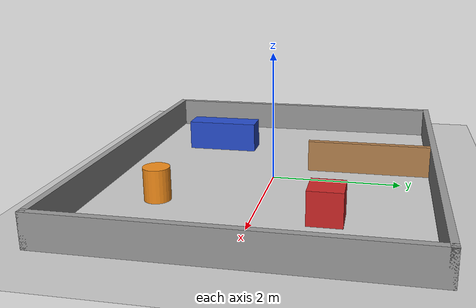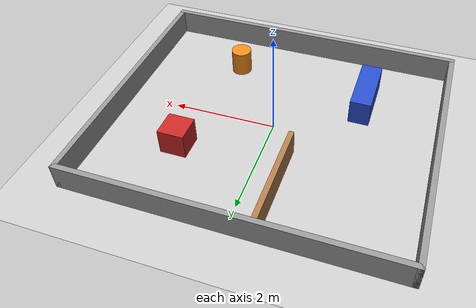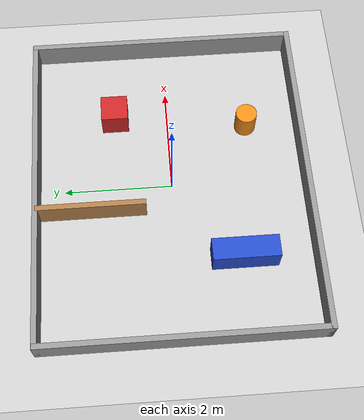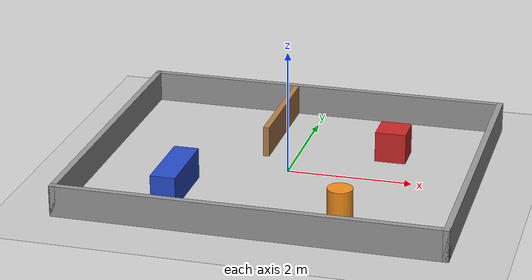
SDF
<?xml version="1.0" ?>
<sdf version="1.6">
  <world name="room">
    <include><uri>model://sun</uri></include>
    <include><uri>model://ground_plane</uri></include>

    <!-- Outer walls: room is 6 m (x) by 5 m (y), robot starts in the middle -->
    <model name="wall_north">
      <static>true</static>
      <pose>0 2.5 0.25 0 0 0</pose>
      <link name="link">
        <collision name="collision"><geometry><box><size>6.1 0.1 0.5</size></box></geometry></collision>
        <visual name="visual">
          <geometry><box><size>6.1 0.1 0.5</size></box></geometry>
          <material><script><uri>file://media/materials/scripts/gazebo.material</uri><name>Gazebo/Grey</name></script></material>
        </visual>
      </link>
    </model>
    <model name="wall_south">
      <static>true</static>
      <pose>0 -2.5 0.25 0 0 0</pose>
      <link name="link">
        <collision name="collision"><geometry><box><size>6.1 0.1 0.5</size></box></geometry></collision>
        <visual name="visual">
          <geometry><box><size>6.1 0.1 0.5</size></box></geometry>
          <material><script><uri>file://media/materials/scripts/gazebo.material</uri><name>Gazebo/Grey</name></script></material>
        </visual>
      </link>
    </model>
    <model name="wall_east">
      <static>true</static>
      <pose>3 0 0.25 0 0 0</pose>
      <link name="link">
        <collision name="collision"><geometry><box><size>0.1 5.1 0.5</size></box></geometry></collision>
        <visual name="visual">
          <geometry><box><size>0.1 5.1 0.5</size></box></geometry>
          <material><script><uri>file://media/materials/scripts/gazebo.material</uri><name>Gazebo/Grey</name></script></material>
        </visual>
      </link>
    </model>
    <model name="wall_west">
      <static>true</static>
      <pose>-3 0 0.25 0 0 0</pose>
      <link name="link">
        <collision name="collision"><geometry><box><size>0.1 5.1 0.5</size></box></geometry></collision>
        <visual name="visual">
          <geometry><box><size>0.1 5.1 0.5</size></box></geometry>
          <material><script><uri>file://media/materials/scripts/gazebo.material</uri><name>Gazebo/Grey</name></script></material>
        </visual>
      </link>
    </model>

    <!-- Things to map: a partition wall, two boxes, a pillar -->
    <model name="partition">
      <static>true</static>
      <pose>-0.5 1.5 0.25 0 0 0</pose>
      <link name="link">
        <collision name="collision"><geometry><box><size>0.1 2.0 0.5</size></box></geometry></collision>
        <visual name="visual">
          <geometry><box><size>0.1 2.0 0.5</size></box></geometry>
          <material><script><uri>file://media/materials/scripts/gazebo.material</uri><name>Gazebo/Wood</name></script></material>
        </visual>
      </link>
    </model>
    <model name="box_1">
      <static>true</static>
      <pose>1.5 1.0 0.25 0 0 0</pose>
      <link name="link">
        <collision name="collision"><geometry><box><size>0.5 0.5 0.5</size></box></geometry></collision>
        <visual name="visual">
          <geometry><box><size>0.5 0.5 0.5</size></box></geometry>
          <material><script><uri>file://media/materials/scripts/gazebo.material</uri><name>Gazebo/Red</name></script></material>
        </visual>
      </link>
    </model>
    <model name="box_2">
      <static>true</static>
      <pose>-1.5 -1.2 0.25 0 0 0</pose>
      <link name="link">
        <collision name="collision"><geometry><box><size>0.4 1.2 0.5</size></box></geometry></collision>
        <visual name="visual">
          <geometry><box><size>0.4 1.2 0.5</size></box></geometry>
          <material><script><uri>file://media/materials/scripts/gazebo.material</uri><name>Gazebo/Blue</name></script></material>
        </visual>
      </link>
    </model>
    <model name="pillar">
      <static>true</static>
      <pose>1.2 -1.5 0.25 0 0 0</pose>
      <link name="link">
        <collision name="collision"><geometry><cylinder><radius>0.2</radius><length>0.5</length></cylinder></geometry></collision>
        <visual name="visual">
          <geometry><cylinder><radius>0.2</radius><length>0.5</length></cylinder></geometry>
          <material><script><uri>file://media/materials/scripts/gazebo.material</uri><name>Gazebo/Orange</name></script></material>
        </visual>
      </link>
    </model>
  </world>
</sdf>
